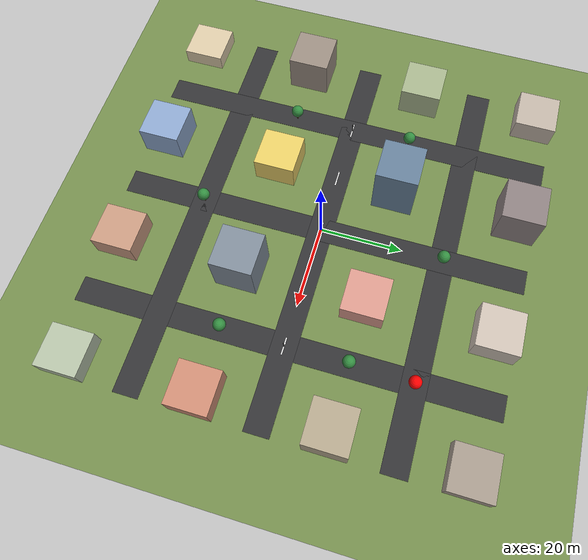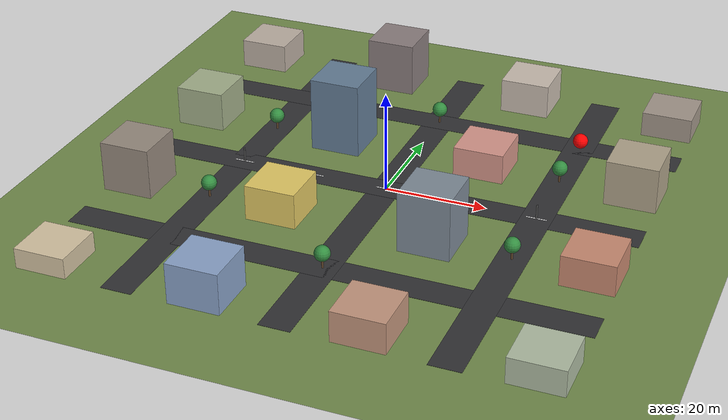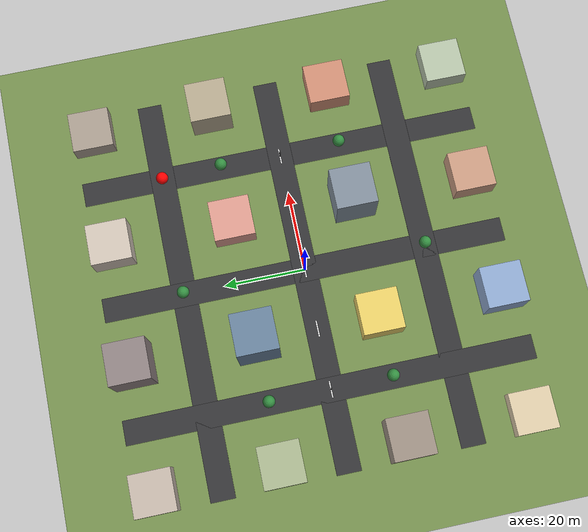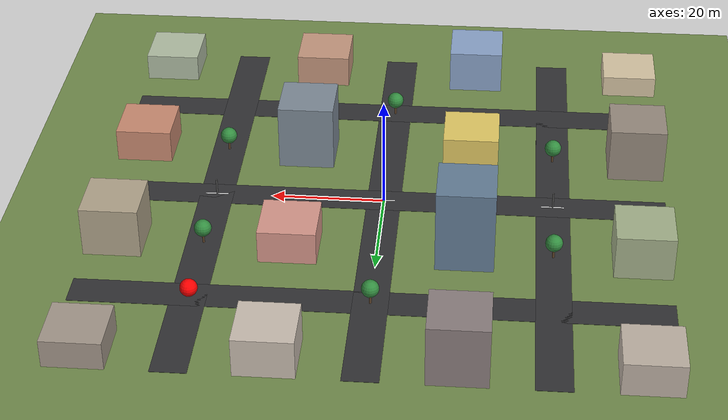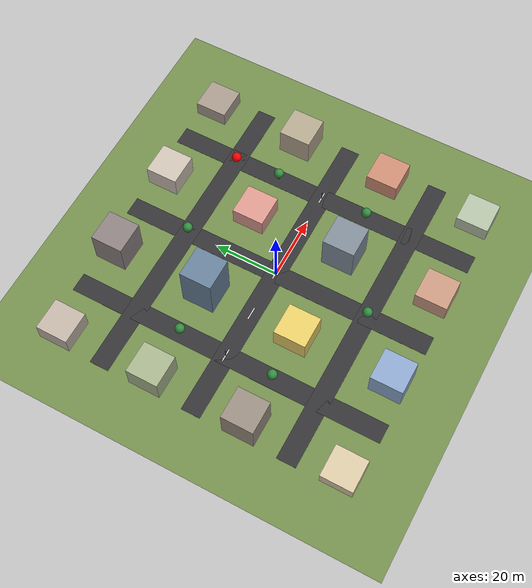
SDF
<?xml version="1.0" encoding="UTF-8"?>
<sdf version="1.9">
  <world name="city">
    <physics type="ode">
      <max_step_size>0.004</max_step_size>
      <real_time_factor>1.0</real_time_factor>
      <real_time_update_rate>250</real_time_update_rate>
    </physics>
    <gravity>0 0 -9.8</gravity>
    <magnetic_field>1.32e-06 2.16e-05 -4.34e-05</magnetic_field>
    <atmosphere type="adiabatic"/>
    <scene>
      <grid>false</grid>
      <ambient>0.4 0.4 0.4 1</ambient>
      <background>0.7 0.78 0.9 1</background>
      <shadows>false</shadows>
    </scene>

    <model name="ground"><static>true</static>
      <link name="link">
        <collision name="c"><geometry><plane><normal>0 0 1</normal><size>400 400</size></plane></geometry>
          <surface><friction><ode/></friction><bounce/><contact/></surface></collision>
        <visual name="v"><geometry><plane><normal>0 0 1</normal><size>400 400</size></plane></geometry>
          <material><ambient>0.45 0.55 0.30 1</ambient><diffuse>0.45 0.55 0.30 1</diffuse></material></visual>
        <inertial><mass>1</mass><inertia><ixx>1</ixx><ixy>0</ixy><ixz>0</ixz><iyy>1</iyy><iyz>0</iyz><izz>1</izz></inertia></inertial>
      </link>
    </model>

    <!-- Roads: 3 east-west + 3 north-south, on a 30 m grid. -->
    <!-- east-west roads -->
    <model name="rd_ew_n"><static>true</static><pose>0  30 0.025 0 0 0</pose><link name="l">
      <collision name="c"><geometry><box><size>100 6 0.05</size></box></geometry></collision>
      <visual name="v"><geometry><box><size>100 6 0.05</size></box></geometry>
        <material><ambient>0.20 0.20 0.21 1</ambient><diffuse>0.20 0.20 0.21 1</diffuse></material></visual></link></model>
    <model name="rd_ew_c"><static>true</static><pose>0   0 0.025 0 0 0</pose><link name="l">
      <collision name="c"><geometry><box><size>100 6 0.05</size></box></geometry></collision>
      <visual name="v"><geometry><box><size>100 6 0.05</size></box></geometry>
        <material><ambient>0.20 0.20 0.21 1</ambient><diffuse>0.20 0.20 0.21 1</diffuse></material></visual></link></model>
    <model name="rd_ew_s"><static>true</static><pose>0 -30 0.025 0 0 0</pose><link name="l">
      <collision name="c"><geometry><box><size>100 6 0.05</size></box></geometry></collision>
      <visual name="v"><geometry><box><size>100 6 0.05</size></box></geometry>
        <material><ambient>0.20 0.20 0.21 1</ambient><diffuse>0.20 0.20 0.21 1</diffuse></material></visual></link></model>

    <!-- north-south roads -->
    <model name="rd_ns_w"><static>true</static><pose>-30 0 0.025 0 0 0</pose><link name="l">
      <collision name="c"><geometry><box><size>6 100 0.05</size></box></geometry></collision>
      <visual name="v"><geometry><box><size>6 100 0.05</size></box></geometry>
        <material><ambient>0.20 0.20 0.21 1</ambient><diffuse>0.20 0.20 0.21 1</diffuse></material></visual></link></model>
    <model name="rd_ns_c"><static>true</static><pose>  0 0 0.025 0 0 0</pose><link name="l">
      <collision name="c"><geometry><box><size>6 100 0.05</size></box></geometry></collision>
      <visual name="v"><geometry><box><size>6 100 0.05</size></box></geometry>
        <material><ambient>0.20 0.20 0.21 1</ambient><diffuse>0.20 0.20 0.21 1</diffuse></material></visual></link></model>
    <model name="rd_ns_e"><static>true</static><pose> 30 0 0.025 0 0 0</pose><link name="l">
      <collision name="c"><geometry><box><size>6 100 0.05</size></box></geometry></collision>
      <visual name="v"><geometry><box><size>6 100 0.05</size></box></geometry>
        <material><ambient>0.20 0.20 0.21 1</ambient><diffuse>0.20 0.20 0.21 1</diffuse></material></visual></link></model>

    <!-- Centre-line markings (white dashes on the centre EW road only — enough
         signal for a downward-looking matcher to lock on). -->
    <model name="mark1"><static>true</static><pose>-30 0 0.06 0 0 0</pose><link name="l">
      <visual name="v"><geometry><box><size>4 0.3 0.01</size></box></geometry><material><ambient>1 1 1 1</ambient><diffuse>1 1 1 1</diffuse></material></visual></link></model>
    <model name="mark2"><static>true</static><pose>-15 0 0.06 0 0 0</pose><link name="l">
      <visual name="v"><geometry><box><size>4 0.3 0.01</size></box></geometry><material><ambient>1 1 1 1</ambient><diffuse>1 1 1 1</diffuse></material></visual></link></model>
    <model name="mark3"><static>true</static><pose>  0 0 0.06 0 0 0</pose><link name="l">
      <visual name="v"><geometry><box><size>4 0.3 0.01</size></box></geometry><material><ambient>1 1 1 1</ambient><diffuse>1 1 1 1</diffuse></material></visual></link></model>
    <model name="mark4"><static>true</static><pose> 15 0 0.06 0 0 0</pose><link name="l">
      <visual name="v"><geometry><box><size>4 0.3 0.01</size></box></geometry><material><ambient>1 1 1 1</ambient><diffuse>1 1 1 1</diffuse></material></visual></link></model>
    <model name="mark5"><static>true</static><pose> 30 0 0.06 0 0 0</pose><link name="l">
      <visual name="v"><geometry><box><size>4 0.3 0.01</size></box></geometry><material><ambient>1 1 1 1</ambient><diffuse>1 1 1 1</diffuse></material></visual></link></model>

    <!-- 16 buildings — 4×4 grid of blocks, mixed heights and colours.
         Block centers at ±15, ±45 on both axes; building sized 10×10×H. -->
    <model name="b00"><static>true</static><pose>-45 -45  2.0 0 0 0</pose><link name="l">
      <collision name="c"><geometry><box><size>10 10 4</size></box></geometry></collision>
      <visual name="v"><geometry><box><size>10 10 4</size></box></geometry><material><ambient>0.85 0.78 0.65 1</ambient><diffuse>0.85 0.78 0.65 1</diffuse></material></visual></link></model>
    <model name="b01"><static>true</static><pose>-15 -45  4.0 0 0 0</pose><link name="l">
      <collision name="c"><geometry><box><size>10 10 8</size></box></geometry></collision>
      <visual name="v"><geometry><box><size>10 10 8</size></box></geometry><material><ambient>0.55 0.65 0.80 1</ambient><diffuse>0.55 0.65 0.80 1</diffuse></material></visual></link></model>
    <model name="b02"><static>true</static><pose> 15 -45  3.0 0 0 0</pose><link name="l">
      <collision name="c"><geometry><box><size>10 10 6</size></box></geometry></collision>
      <visual name="v"><geometry><box><size>10 10 6</size></box></geometry><material><ambient>0.78 0.60 0.50 1</ambient><diffuse>0.78 0.60 0.50 1</diffuse></material></visual></link></model>
    <model name="b03"><static>true</static><pose> 45 -45  2.5 0 0 0</pose><link name="l">
      <collision name="c"><geometry><box><size>10 10 5</size></box></geometry></collision>
      <visual name="v"><geometry><box><size>10 10 5</size></box></geometry><material><ambient>0.70 0.75 0.65 1</ambient><diffuse>0.70 0.75 0.65 1</diffuse></material></visual></link></model>
    <model name="b10"><static>true</static><pose>-45 -15  5.0 0 0 0</pose><link name="l">
      <collision name="c"><geometry><box><size>10 10 10</size></box></geometry></collision>
      <visual name="v"><geometry><box><size>10 10 10</size></box></geometry><material><ambient>0.60 0.55 0.50 1</ambient><diffuse>0.60 0.55 0.50 1</diffuse></material></visual></link></model>
    <model name="b11"><static>true</static><pose>-15 -15  3.5 0 0 0</pose><link name="l">
      <collision name="c"><geometry><box><size>10 10 7</size></box></geometry></collision>
      <visual name="v"><geometry><box><size>10 10 7</size></box></geometry><material><ambient>0.90 0.80 0.40 1</ambient><diffuse>0.90 0.80 0.40 1</diffuse></material></visual></link></model>
    <model name="b12"><static>true</static><pose> 15 -15  6.0 0 0 0</pose><link name="l">
      <collision name="c"><geometry><box><size>10 10 12</size></box></geometry></collision>
      <visual name="v"><geometry><box><size>10 10 12</size></box></geometry><material><ambient>0.50 0.55 0.60 1</ambient><diffuse>0.50 0.55 0.60 1</diffuse></material></visual></link></model>
    <model name="b13"><static>true</static><pose> 45 -15  3.0 0 0 0</pose><link name="l">
      <collision name="c"><geometry><box><size>10 10 6</size></box></geometry></collision>
      <visual name="v"><geometry><box><size>10 10 6</size></box></geometry><material><ambient>0.80 0.55 0.45 1</ambient><diffuse>0.80 0.55 0.45 1</diffuse></material></visual></link></model>
    <model name="b20"><static>true</static><pose>-45  15  4.0 0 0 0</pose><link name="l">
      <collision name="c"><geometry><box><size>10 10 8</size></box></geometry></collision>
      <visual name="v"><geometry><box><size>10 10 8</size></box></geometry><material><ambient>0.65 0.70 0.55 1</ambient><diffuse>0.65 0.70 0.55 1</diffuse></material></visual></link></model>
    <model name="b21"><static>true</static><pose>-15  15  7.5 0 0 0</pose><link name="l">
      <collision name="c"><geometry><box><size>10 10 15</size></box></geometry></collision>
      <visual name="v"><geometry><box><size>10 10 15</size></box></geometry><material><ambient>0.40 0.50 0.60 1</ambient><diffuse>0.40 0.50 0.60 1</diffuse></material></visual></link></model>
    <model name="b22"><static>true</static><pose> 15  15  3.0 0 0 0</pose><link name="l">
      <collision name="c"><geometry><box><size>10 10 6</size></box></geometry></collision>
      <visual name="v"><geometry><box><size>10 10 6</size></box></geometry><material><ambient>0.85 0.60 0.55 1</ambient><diffuse>0.85 0.60 0.55 1</diffuse></material></visual></link></model>
    <model name="b23"><static>true</static><pose> 45  15  4.5 0 0 0</pose><link name="l">
      <collision name="c"><geometry><box><size>10 10 9</size></box></geometry></collision>
      <visual name="v"><geometry><box><size>10 10 9</size></box></geometry><material><ambient>0.70 0.65 0.55 1</ambient><diffuse>0.70 0.65 0.55 1</diffuse></material></visual></link></model>
    <model name="b30"><static>true</static><pose>-45  45  3.0 0 0 0</pose><link name="l">
      <collision name="c"><geometry><box><size>10 10 6</size></box></geometry></collision>
      <visual name="v"><geometry><box><size>10 10 6</size></box></geometry><material><ambient>0.75 0.70 0.65 1</ambient><diffuse>0.75 0.70 0.65 1</diffuse></material></visual></link></model>
    <model name="b31"><static>true</static><pose>-15  45  5.5 0 0 0</pose><link name="l">
      <collision name="c"><geometry><box><size>10 10 11</size></box></geometry></collision>
      <visual name="v"><geometry><box><size>10 10 11</size></box></geometry><material><ambient>0.55 0.50 0.50 1</ambient><diffuse>0.55 0.50 0.50 1</diffuse></material></visual></link></model>
    <model name="b32"><static>true</static><pose> 15  45  3.5 0 0 0</pose><link name="l">
      <collision name="c"><geometry><box><size>10 10 7</size></box></geometry></collision>
      <visual name="v"><geometry><box><size>10 10 7</size></box></geometry><material><ambient>0.80 0.75 0.70 1</ambient><diffuse>0.80 0.75 0.70 1</diffuse></material></visual></link></model>
    <model name="b33"><static>true</static><pose> 45  45  2.5 0 0 0</pose><link name="l">
      <collision name="c"><geometry><box><size>10 10 5</size></box></geometry></collision>
      <visual name="v"><geometry><box><size>10 10 5</size></box></geometry><material><ambient>0.65 0.60 0.55 1</ambient><diffuse>0.65 0.60 0.55 1</diffuse></material></visual></link></model>

    <!-- Trees (cylinder trunk + sphere canopy) along the streets. -->
    <model name="t0"><static>true</static><pose>-30  15 0 0 0 0</pose><link name="l">
      <visual name="trunk"><pose>0 0 1 0 0 0</pose><geometry><cylinder><radius>0.2</radius><length>2</length></cylinder></geometry><material><ambient>0.35 0.25 0.15 1</ambient><diffuse>0.35 0.25 0.15 1</diffuse></material></visual>
      <visual name="canopy"><pose>0 0 3 0 0 0</pose><geometry><sphere><radius>1.5</radius></sphere></geometry><material><ambient>0.20 0.55 0.25 1</ambient><diffuse>0.20 0.55 0.25 1</diffuse></material></visual></link></model>
    <model name="t1"><static>true</static><pose> 30  15 0 0 0 0</pose><link name="l">
      <visual name="trunk"><pose>0 0 1 0 0 0</pose><geometry><cylinder><radius>0.2</radius><length>2</length></cylinder></geometry><material><ambient>0.35 0.25 0.15 1</ambient><diffuse>0.35 0.25 0.15 1</diffuse></material></visual>
      <visual name="canopy"><pose>0 0 3 0 0 0</pose><geometry><sphere><radius>1.5</radius></sphere></geometry><material><ambient>0.20 0.55 0.25 1</ambient><diffuse>0.20 0.55 0.25 1</diffuse></material></visual></link></model>
    <model name="t2"><static>true</static><pose>-30 -15 0 0 0 0</pose><link name="l">
      <visual name="trunk"><pose>0 0 1 0 0 0</pose><geometry><cylinder><radius>0.2</radius><length>2</length></cylinder></geometry><material><ambient>0.35 0.25 0.15 1</ambient><diffuse>0.35 0.25 0.15 1</diffuse></material></visual>
      <visual name="canopy"><pose>0 0 3 0 0 0</pose><geometry><sphere><radius>1.5</radius></sphere></geometry><material><ambient>0.20 0.55 0.25 1</ambient><diffuse>0.20 0.55 0.25 1</diffuse></material></visual></link></model>
    <model name="t3"><static>true</static><pose> 30 -15 0 0 0 0</pose><link name="l">
      <visual name="trunk"><pose>0 0 1 0 0 0</pose><geometry><cylinder><radius>0.2</radius><length>2</length></cylinder></geometry><material><ambient>0.35 0.25 0.15 1</ambient><diffuse>0.35 0.25 0.15 1</diffuse></material></visual>
      <visual name="canopy"><pose>0 0 3 0 0 0</pose><geometry><sphere><radius>1.5</radius></sphere></geometry><material><ambient>0.20 0.55 0.25 1</ambient><diffuse>0.20 0.55 0.25 1</diffuse></material></visual></link></model>
    <model name="t4"><static>true</static><pose>  0  30 0 0 0 0</pose><link name="l">
      <visual name="trunk"><pose>0 0 1 0 0 0</pose><geometry><cylinder><radius>0.2</radius><length>2</length></cylinder></geometry><material><ambient>0.35 0.25 0.15 1</ambient><diffuse>0.35 0.25 0.15 1</diffuse></material></visual>
      <visual name="canopy"><pose>0 0 3 0 0 0</pose><geometry><sphere><radius>1.5</radius></sphere></geometry><material><ambient>0.20 0.55 0.25 1</ambient><diffuse>0.20 0.55 0.25 1</diffuse></material></visual></link></model>
    <model name="t5"><static>true</static><pose>  0 -30 0 0 0 0</pose><link name="l">
      <visual name="trunk"><pose>0 0 1 0 0 0</pose><geometry><cylinder><radius>0.2</radius><length>2</length></cylinder></geometry><material><ambient>0.35 0.25 0.15 1</ambient><diffuse>0.35 0.25 0.15 1</diffuse></material></visual>
      <visual name="canopy"><pose>0 0 3 0 0 0</pose><geometry><sphere><radius>1.5</radius></sphere></geometry><material><ambient>0.20 0.55 0.25 1</ambient><diffuse>0.20 0.55 0.25 1</diffuse></material></visual></link></model>

    <!-- Lampposts at the cardinal intersections.  Tall, thin — good lidar
         test targets. -->
    <model name="lp_n"><static>true</static><pose>  0  30 1.5 0 0 0</pose><link name="l">
      <collision name="c"><geometry><cylinder><radius>0.15</radius><length>3</length></cylinder></geometry></collision>
      <visual name="v"><geometry><cylinder><radius>0.15</radius><length>3</length></cylinder></geometry><material><ambient>0.3 0.3 0.3 1</ambient><diffuse>0.3 0.3 0.3 1</diffuse></material></visual></link></model>
    <model name="lp_s"><static>true</static><pose>  0 -30 1.5 0 0 0</pose><link name="l">
      <collision name="c"><geometry><cylinder><radius>0.15</radius><length>3</length></cylinder></geometry></collision>
      <visual name="v"><geometry><cylinder><radius>0.15</radius><length>3</length></cylinder></geometry><material><ambient>0.3 0.3 0.3 1</ambient><diffuse>0.3 0.3 0.3 1</diffuse></material></visual></link></model>
    <model name="lp_e"><static>true</static><pose> 30   0 1.5 0 0 0</pose><link name="l">
      <collision name="c"><geometry><cylinder><radius>0.15</radius><length>3</length></cylinder></geometry></collision>
      <visual name="v"><geometry><cylinder><radius>0.15</radius><length>3</length></cylinder></geometry><material><ambient>0.3 0.3 0.3 1</ambient><diffuse>0.3 0.3 0.3 1</diffuse></material></visual></link></model>
    <model name="lp_w"><static>true</static><pose>-30   0 1.5 0 0 0</pose><link name="l">
      <collision name="c"><geometry><cylinder><radius>0.15</radius><length>3</length></cylinder></geometry></collision>
      <visual name="v"><geometry><cylinder><radius>0.15</radius><length>3</length></cylinder></geometry><material><ambient>0.3 0.3 0.3 1</ambient><diffuse>0.3 0.3 0.3 1</diffuse></material></visual></link></model>

    <!-- Kamikaze dive target for Demo 2. Sits at street intersection (30,30) in ENU.
         Red sphere, r=1.5 m, ground-touching at Z=1.5. Visible from altitude. -->
    <model name="kamikaze_target">
      <static>true</static>
      <pose>30 30 1.5 0 0 0</pose>
      <link name="l">
        <collision name="c">
          <geometry><sphere><radius>1.5</radius></sphere></geometry>
        </collision>
        <visual name="v">
          <geometry><sphere><radius>1.5</radius></sphere></geometry>
          <material>
            <ambient>1 0 0 1</ambient>
            <diffuse>1 0 0 1</diffuse>
          </material>
        </visual>
      </link>
    </model>

    <light name="sunUTC" type="directional">
      <pose>0 0 500 0 -0 0</pose>
      <cast_shadows>true</cast_shadows>
      <intensity>1</intensity>
      <direction>0.001 0.625 -0.78</direction>
      <diffuse>0.904 0.904 0.904 1</diffuse>
      <specular>0.271 0.271 0.271 1</specular>
      <attenuation><range>2000</range><linear>0</linear><constant>1</constant><quadratic>0</quadratic></attenuation>
      <spot><inner_angle>0</inner_angle><outer_angle>0</outer_angle><falloff>0</falloff></spot>
    </light>

    <spherical_coordinates>
      <surface_model>EARTH_WGS84</surface_model>
      <world_frame_orientation>ENU</world_frame_orientation>
      <latitude_deg>47.397971057728974</latitude_deg>
      <longitude_deg> 8.546163739800146</longitude_deg>
      <elevation>0</elevation>
    </spherical_coordinates>
  </world>
</sdf>
